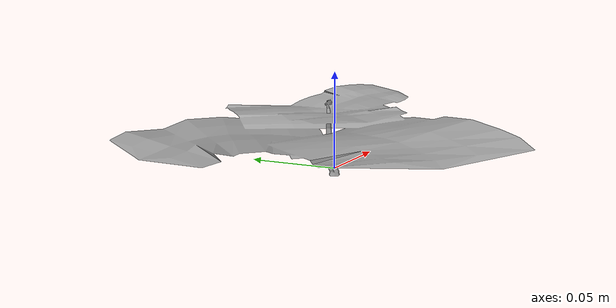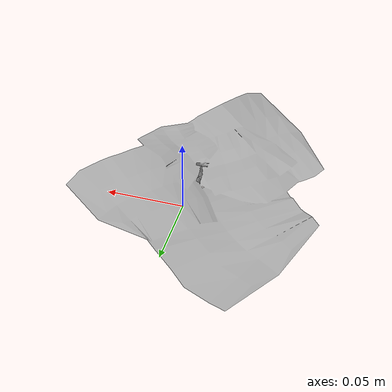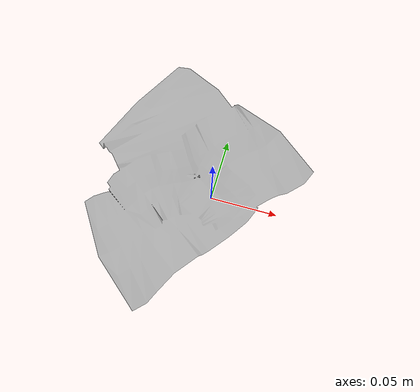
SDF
<?xml version="1.0"?>
<sdf version="1.6">
  <model name="cotton1">
    <static>true</static>
    <link name="link">
      <visual name="visual">
        <geometry>
          <mesh>
            <uri>model://cotton1/cotton1.dae</uri>
            <scale>1 1 0.3</scale>
          </mesh>
        </geometry>
      </visual>
    </link>
  </model>
</sdf>
